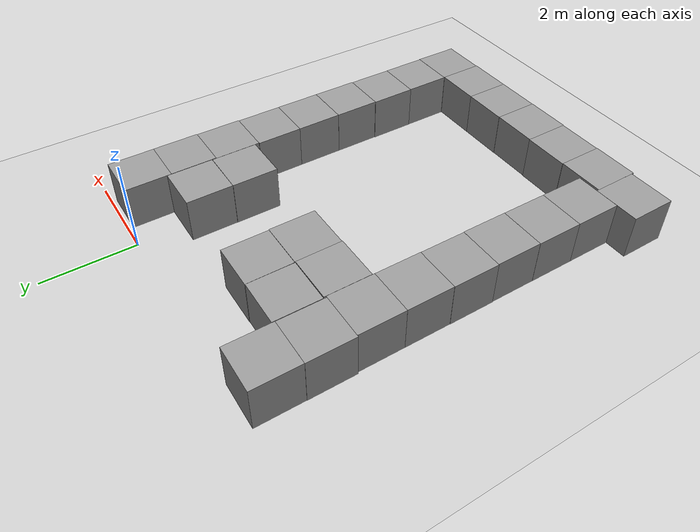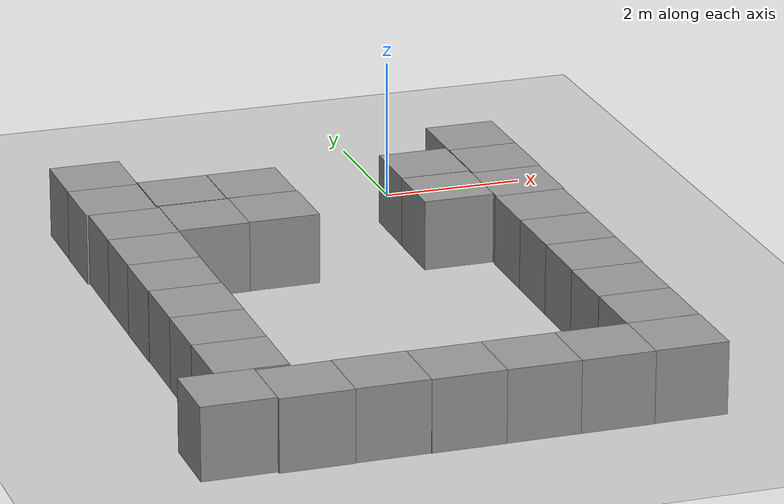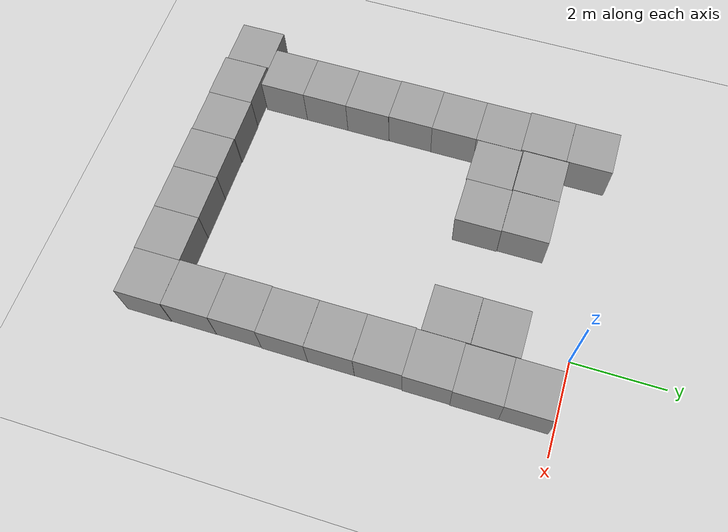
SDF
<sdf version="1.7">
 <world name="default">
  <model name="ground_plane">
   <static>1</static>
   <link name="link">
    <collision name="collision">
     <geometry><plane><normal>0 0 1</normal><size>100 100</size></plane></geometry>
     <surface>
      <contact><collide_bitmask>65535</collide_bitmask></contact>
      <friction><ode><mu>100</mu><mu2>50</mu2></ode></friction>
     </surface>
    </collision>
    <visual name="visual">
     <cast_shadows>0</cast_shadows>
     <geometry><plane><normal>0 0 1</normal><size>100 100</size></plane></geometry>
     <material>
      <script><uri>file://media/materials/scripts/gazebo.material</uri><name>Gazebo/Grey</name></script>
     </material>
    </visual>
   </link>
  </model>
  <model name="unit_box">
   <pose>0.042988 -1.50597 0.499995 -1e-05 -0 -0.000271</pose>
   <link name="link">
    <inertial>
     <mass>1</mass>
     <inertia>
      <ixx>0.166667</ixx>
      <ixy>0</ixy>
      <ixz>0</ixz>
      <iyy>0.166667</iyy>
      <iyz>0</iyz>
      <izz>0.166667</izz>
     </inertia>
    </inertial>
    <collision name="collision"><geometry><box><size>1 1 1</size></box></geometry></collision>
    <visual name="visual">
     <geometry><box><size>1 1 1</size></box></geometry>
     <material>
      <script><name>Gazebo/Grey</name><uri>file://media/materials/scripts/gazebo.material</uri></script>
     </material>
    </visual>
   </link>
  </model>
  <model name="unit_box_0">
   <pose>-2.49934 -1.5123 0.499995 -0 1e-05 -0.000364</pose>
   <link name="link">
    <inertial>
     <mass>1</mass>
     <inertia>
      <ixx>0.166667</ixx>
      <ixy>0</ixy>
      <ixz>0</ixz>
      <iyy>0.166667</iyy>
      <iyz>0</iyz>
      <izz>0.166667</izz>
     </inertia>
    </inertial>
    <collision name="collision"><geometry><box><size>1 1 1</size></box></geometry></collision>
    <visual name="visual">
     <geometry><box><size>1 1 1</size></box></geometry>
     <material>
      <script><name>Gazebo/Grey</name><uri>file://media/materials/scripts/gazebo.material</uri></script>
     </material>
    </visual>
   </link>
  </model>
  <model name="unit_box_1">
   <pose>-3.50337 -1.51492 0.499995 -0 1e-05 -0.005424</pose>
   <link name="link">
    <inertial>
     <mass>1</mass>
     <inertia>
      <ixx>0.166667</ixx>
      <ixy>0</ixy>
      <ixz>0</ixz>
      <iyy>0.166667</iyy>
      <iyz>0</iyz>
      <izz>0.166667</izz>
     </inertia>
    </inertial>
    <collision name="collision"><geometry><box><size>1 1 1</size></box></geometry></collision>
    <visual name="visual">
     <geometry><box><size>1 1 1</size></box></geometry>
     <material>
      <script><name>Gazebo/Grey</name><uri>file://media/materials/scripts/gazebo.material</uri></script>
     </material>
    </visual>
   </link>
  </model>
  <model name="unit_box_2">
   <pose>-4.51469 -1.56923 0.499995 0 1e-05 -0.003208</pose>
   <link name="link">
    <inertial>
     <mass>1</mass>
     <inertia>
      <ixx>0.166667</ixx>
      <ixy>0</ixy>
      <ixz>0</ixz>
      <iyy>0.166667</iyy>
      <iyz>0</iyz>
      <izz>0.166667</izz>
     </inertia>
    </inertial>
    <collision name="collision"><geometry><box><size>1 1 1</size></box></geometry></collision>
    <visual name="visual">
     <geometry><box><size>1 1 1</size></box></geometry>
     <material>
      <script><name>Gazebo/Grey</name><uri>file://media/materials/scripts/gazebo.material</uri></script>
     </material>
    </visual>
   </link>
  </model>
  <model name="unit_box_3">
   <pose>-4.50709 -0.569228 0.5 0 -0 -0.003254</pose>
   <link name="link">
    <inertial>
     <mass>1</mass>
     <inertia>
      <ixx>0.166667</ixx>
      <ixy>0</ixy>
      <ixz>0</ixz>
      <iyy>0.166667</iyy>
      <iyz>0</iyz>
      <izz>0.166667</izz>
     </inertia>
    </inertial>
    <collision name="collision"><geometry><box><size>1 1 1</size></box></geometry></collision>
    <visual name="visual">
     <geometry><box><size>1 1 1</size></box></geometry>
     <material>
      <script><name>Gazebo/Grey</name><uri>file://media/materials/scripts/gazebo.material</uri></script>
     </material>
    </visual>
   </link>
  </model>
  <model name="unit_box_4">
   <pose>1.05308 -1.6029 0.499995 -0 -1e-05 0.000584</pose>
   <link name="link">
    <inertial>
     <mass>1</mass>
     <inertia>
      <ixx>0.166667</ixx>
      <ixy>0</ixy>
      <ixz>0</ixz>
      <iyy>0.166667</iyy>
      <iyz>0</iyz>
      <izz>0.166667</izz>
     </inertia>
    </inertial>
    <collision name="collision"><geometry><box><size>1 1 1</size></box></geometry></collision>
    <visual name="visual">
     <geometry><box><size>1 1 1</size></box></geometry>
     <material>
      <script><name>Gazebo/Grey</name><uri>file://media/materials/scripts/gazebo.material</uri></script>
     </material>
    </visual>
   </link>
  </model>
  <model name="unit_box_5">
   <pose>1.04997 -0.60286 0.499995 0 -1e-05 0.000651</pose>
   <link name="link">
    <inertial>
     <mass>1</mass>
     <inertia>
      <ixx>0.166667</ixx>
      <ixy>0</ixy>
      <ixz>0</ixz>
      <iyy>0.166667</iyy>
      <iyz>0</iyz>
      <izz>0.166667</izz>
     </inertia>
    </inertial>
    <collision name="collision"><geometry><box><size>1 1 1</size></box></geometry></collision>
    <visual name="visual">
     <geometry><box><size>1 1 1</size></box></geometry>
     <material>
      <script><name>Gazebo/Grey</name><uri>file://media/materials/scripts/gazebo.material</uri></script>
     </material>
    </visual>
   </link>
  </model>
  <model name="unit_box_23">
   <pose>0.038282 -2.50874 0.499995 -1e-05 -0 -0.001637</pose>
   <link name="link">
    <inertial>
     <mass>1</mass>
     <inertia>
      <ixx>0.166667</ixx>
      <ixy>0</ixy>
      <ixz>0</ixz>
      <iyy>0.166667</iyy>
      <iyz>0</iyz>
      <izz>0.166667</izz>
     </inertia>
    </inertial>
    <collision name="collision"><geometry><box><size>1 1 1</size></box></geometry></collision>
    <visual name="visual">
     <geometry><box><size>1 1 1</size></box></geometry>
     <material>
      <script><name>Gazebo/Grey</name><uri>file://media/materials/scripts/gazebo.material</uri></script>
     </material>
    </visual>
   </link>
  </model>
  <model name="unit_box_24">
   <pose>1.04092 -2.6029 0.5 0 -0 0.000583</pose>
   <link name="link">
    <inertial>
     <mass>1</mass>
     <inertia>
      <ixx>0.166667</ixx>
      <ixy>0</ixy>
      <ixz>0</ixz>
      <iyy>0.166667</iyy>
      <iyz>0</iyz>
      <izz>0.166667</izz>
     </inertia>
    </inertial>
    <collision name="collision"><geometry><box><size>1 1 1</size></box></geometry></collision>
    <visual name="visual">
     <geometry><box><size>1 1 1</size></box></geometry>
     <material>
      <script><name>Gazebo/Grey</name><uri>file://media/materials/scripts/gazebo.material</uri></script>
     </material>
    </visual>
   </link>
  </model>
  <model name="unit_box_25">
   <pose>-2.48369 -2.5149 0.499995 0 -1e-05 0.000153</pose>
   <link name="link">
    <inertial>
     <mass>1</mass>
     <inertia>
      <ixx>0.166667</ixx>
      <ixy>0</ixy>
      <ixz>0</ixz>
      <iyy>0.166667</iyy>
      <iyz>0</iyz>
      <izz>0.166667</izz>
     </inertia>
    </inertial>
    <collision name="collision"><geometry><box><size>1 1 1</size></box></geometry></collision>
    <visual name="visual">
     <geometry><box><size>1 1 1</size></box></geometry>
     <material>
      <script><name>Gazebo/Grey</name><uri>file://media/materials/scripts/gazebo.material</uri></script>
     </material>
    </visual>
   </link>
  </model>
  <model name="unit_box_26">
   <pose>-3.48371 -2.52726 0.5 0 -0 0.000188</pose>
   <link name="link">
    <inertial>
     <mass>1</mass>
     <inertia>
      <ixx>0.166667</ixx>
      <ixy>0</ixy>
      <ixz>0</ixz>
      <iyy>0.166667</iyy>
      <iyz>0</iyz>
      <izz>0.166667</izz>
     </inertia>
    </inertial>
    <collision name="collision"><geometry><box><size>1 1 1</size></box></geometry></collision>
    <visual name="visual">
     <geometry><box><size>1 1 1</size></box></geometry>
     <material>
      <script><name>Gazebo/Grey</name><uri>file://media/materials/scripts/gazebo.material</uri></script>
     </material>
    </visual>
   </link>
  </model>
  <model name="unit_box_27">
   <pose>-4.48668 -2.56933 0.5 0 0 -0.003208</pose>
   <link name="link">
    <inertial>
     <mass>1</mass>
     <inertia>
      <ixx>0.166667</ixx>
      <ixy>0</ixy>
      <ixz>0</ixz>
      <iyy>0.166667</iyy>
      <iyz>0</iyz>
      <izz>0.166667</izz>
     </inertia>
    </inertial>
    <collision name="collision"><geometry><box><size>1 1 1</size></box></geometry></collision>
    <visual name="visual">
     <geometry><box><size>1 1 1</size></box></geometry>
     <material>
      <script><name>Gazebo/Grey</name><uri>file://media/materials/scripts/gazebo.material</uri></script>
     </material>
    </visual>
   </link>
  </model>
  <model name="unit_box_28">
   <pose>1.02617 -3.60292 0.499995 -1e-05 -0 0.000577</pose>
   <link name="link">
    <inertial>
     <mass>1</mass>
     <inertia>
      <ixx>0.166667</ixx>
      <ixy>0</ixy>
      <ixz>0</ixz>
      <iyy>0.166667</iyy>
      <iyz>0</iyz>
      <izz>0.166667</izz>
     </inertia>
    </inertial>
    <collision name="collision"><geometry><box><size>1 1 1</size></box></geometry></collision>
    <visual name="visual">
     <geometry><box><size>1 1 1</size></box></geometry>
     <material>
      <script><name>Gazebo/Grey</name><uri>file://media/materials/scripts/gazebo.material</uri></script>
     </material>
    </visual>
   </link>
  </model>
  <model name="unit_box_29">
   <pose>1.02745 -4.60315 0.499995 1e-05 -0 0.000129</pose>
   <link name="link">
    <inertial>
     <mass>1</mass>
     <inertia>
      <ixx>0.166667</ixx>
      <ixy>0</ixy>
      <ixz>0</ixz>
      <iyy>0.166667</iyy>
      <iyz>0</iyz>
      <izz>0.166667</izz>
     </inertia>
    </inertial>
    <collision name="collision"><geometry><box><size>1 1 1</size></box></geometry></collision>
    <visual name="visual">
     <geometry><box><size>1 1 1</size></box></geometry>
     <material>
      <script><name>Gazebo/Grey</name><uri>file://media/materials/scripts/gazebo.material</uri></script>
     </material>
    </visual>
   </link>
  </model>
  <model name="unit_box_30">
   <pose>1.02536 -5.60349 0.499995 0 -1e-05 -0.000468</pose>
   <link name="link">
    <inertial>
     <mass>1</mass>
     <inertia>
      <ixx>0.166667</ixx>
      <ixy>0</ixy>
      <ixz>0</ixz>
      <iyy>0.166667</iyy>
      <iyz>0</iyz>
      <izz>0.166667</izz>
     </inertia>
    </inertial>
    <collision name="collision"><geometry><box><size>1 1 1</size></box></geometry></collision>
    <visual name="visual">
     <geometry><box><size>1 1 1</size></box></geometry>
     <material>
      <script><name>Gazebo/Grey</name><uri>file://media/materials/scripts/gazebo.material</uri></script>
     </material>
    </visual>
   </link>
  </model>
  <model name="unit_box_31">
   <pose>1.01459 -6.60351 0.499995 0 -1e-05 -0.000478</pose>
   <link name="link">
    <inertial>
     <mass>1</mass>
     <inertia>
      <ixx>0.166667</ixx>
      <ixy>0</ixy>
      <ixz>0</ixz>
      <iyy>0.166667</iyy>
      <iyz>0</iyz>
      <izz>0.166667</izz>
     </inertia>
    </inertial>
    <collision name="collision"><geometry><box><size>1 1 1</size></box></geometry></collision>
    <visual name="visual">
     <geometry><box><size>1 1 1</size></box></geometry>
     <material>
      <script><name>Gazebo/Grey</name><uri>file://media/materials/scripts/gazebo.material</uri></script>
     </material>
    </visual>
   </link>
  </model>
  <model name="unit_box_32">
   <pose>1.01762 -7.60361 0.499995 0 -1e-05 -0.000308</pose>
   <link name="link">
    <inertial>
     <mass>1</mass>
     <inertia>
      <ixx>0.166667</ixx>
      <ixy>0</ixy>
      <ixz>0</ixz>
      <iyy>0.166667</iyy>
      <iyz>0</iyz>
      <izz>0.166667</izz>
     </inertia>
    </inertial>
    <collision name="collision"><geometry><box><size>1 1 1</size></box></geometry></collision>
    <visual name="visual">
     <geometry><box><size>1 1 1</size></box></geometry>
     <material>
      <script><name>Gazebo/Grey</name><uri>file://media/materials/scripts/gazebo.material</uri></script>
     </material>
    </visual>
   </link>
  </model>
  <model name="unit_box_33">
   <pose>1.02574 -8.60396 0.5 0 0 -0.000435</pose>
   <link name="link">
    <inertial>
     <mass>1</mass>
     <inertia>
      <ixx>0.166667</ixx>
      <ixy>0</ixy>
      <ixz>0</ixz>
      <iyy>0.166667</iyy>
      <iyz>0</iyz>
      <izz>0.166667</izz>
     </inertia>
    </inertial>
    <collision name="collision"><geometry><box><size>1 1 1</size></box></geometry></collision>
    <visual name="visual">
     <geometry><box><size>1 1 1</size></box></geometry>
     <material>
      <script><name>Gazebo/Grey</name><uri>file://media/materials/scripts/gazebo.material</uri></script>
     </material>
    </visual>
   </link>
  </model>
  <model name="unit_box_34">
   <pose>0.025735 -8.61417 0.5 0 -0 -0.000435</pose>
   <link name="link">
    <inertial>
     <mass>1</mass>
     <inertia>
      <ixx>0.166667</ixx>
      <ixy>0</ixy>
      <ixz>0</ixz>
      <iyy>0.166667</iyy>
      <iyz>0</iyz>
      <izz>0.166667</izz>
     </inertia>
    </inertial>
    <collision name="collision"><geometry><box><size>1 1 1</size></box></geometry></collision>
    <visual name="visual">
     <geometry><box><size>1 1 1</size></box></geometry>
     <material>
      <script><name>Gazebo/Grey</name><uri>file://media/materials/scripts/gazebo.material</uri></script>
     </material>
    </visual>
   </link>
  </model>
  <model name="unit_box_35">
   <pose>-0.974325 -8.61399 0.499995 0 1e-05 -0.000516</pose>
   <link name="link">
    <inertial>
     <mass>1</mass>
     <inertia>
      <ixx>0.166667</ixx>
      <ixy>0</ixy>
      <ixz>0</ixz>
      <iyy>0.166667</iyy>
      <iyz>0</iyz>
      <izz>0.166667</izz>
     </inertia>
    </inertial>
    <collision name="collision"><geometry><box><size>1 1 1</size></box></geometry></collision>
    <visual name="visual">
     <geometry><box><size>1 1 1</size></box></geometry>
     <material>
      <script><name>Gazebo/Grey</name><uri>file://media/materials/scripts/gazebo.material</uri></script>
     </material>
    </visual>
   </link>
  </model>
  <model name="unit_box_36">
   <pose>-1.97434 -8.61838 0.499947 -7e-06 -0 -0.00052</pose>
   <link name="link">
    <inertial>
     <mass>1</mass>
     <inertia>
      <ixx>0.166667</ixx>
      <ixy>0</ixy>
      <ixz>0</ixz>
      <iyy>0.166667</iyy>
      <iyz>0</iyz>
      <izz>0.166667</izz>
     </inertia>
    </inertial>
    <collision name="collision"><geometry><box><size>1 1 1</size></box></geometry></collision>
    <visual name="visual">
     <geometry><box><size>1 1 1</size></box></geometry>
     <material>
      <script><name>Gazebo/Grey</name><uri>file://media/materials/scripts/gazebo.material</uri></script>
     </material>
    </visual>
   </link>
  </model>
  <model name="unit_box_37">
   <pose>-2.97434 -8.60773 0.5 -0 -0 -0.000525</pose>
   <link name="link">
    <inertial>
     <mass>1</mass>
     <inertia>
      <ixx>0.166667</ixx>
      <ixy>0</ixy>
      <ixz>0</ixz>
      <iyy>0.166667</iyy>
      <iyz>0</iyz>
      <izz>0.166667</izz>
     </inertia>
    </inertial>
    <collision name="collision"><geometry><box><size>1 1 1</size></box></geometry></collision>
    <visual name="visual">
     <geometry><box><size>1 1 1</size></box></geometry>
     <material>
      <script><name>Gazebo/Grey</name><uri>file://media/materials/scripts/gazebo.material</uri></script>
     </material>
    </visual>
   </link>
  </model>
  <model name="unit_box_38">
   <pose>-3.97442 -8.61918 0.499946 -1e-05 -0 -0.000657</pose>
   <link name="link">
    <inertial>
     <mass>1</mass>
     <inertia>
      <ixx>0.166667</ixx>
      <ixy>0</ixy>
      <ixz>0</ixz>
      <iyy>0.166667</iyy>
      <iyz>0</iyz>
      <izz>0.166667</izz>
     </inertia>
    </inertial>
    <collision name="collision"><geometry><box><size>1 1 1</size></box></geometry></collision>
    <visual name="visual">
     <geometry><box><size>1 1 1</size></box></geometry>
     <material>
      <script><name>Gazebo/Grey</name><uri>file://media/materials/scripts/gazebo.material</uri></script>
     </material>
    </visual>
   </link>
  </model>
  <model name="unit_box_39">
   <pose>-4.49101 -3.56933 0.499995 0 1e-05 -0.003201</pose>
   <link name="link">
    <inertial>
     <mass>1</mass>
     <inertia>
      <ixx>0.166667</ixx>
      <ixy>0</ixy>
      <ixz>0</ixz>
      <iyy>0.166667</iyy>
      <iyz>0</iyz>
      <izz>0.166667</izz>
     </inertia>
    </inertial>
    <collision name="collision"><geometry><box><size>1 1 1</size></box></geometry></collision>
    <visual name="visual">
     <geometry><box><size>1 1 1</size></box></geometry>
     <material>
      <script><name>Gazebo/Grey</name><uri>file://media/materials/scripts/gazebo.material</uri></script>
     </material>
    </visual>
   </link>
  </model>
  <model name="unit_box_40">
   <pose>-4.49822 -4.56931 0.5 0 -0 -0.003203</pose>
   <link name="link">
    <inertial>
     <mass>1</mass>
     <inertia>
      <ixx>0.166667</ixx>
      <ixy>0</ixy>
      <ixz>0</ixz>
      <iyy>0.166667</iyy>
      <iyz>0</iyz>
      <izz>0.166667</izz>
     </inertia>
    </inertial>
    <collision name="collision"><geometry><box><size>1 1 1</size></box></geometry></collision>
    <visual name="visual">
     <geometry><box><size>1 1 1</size></box></geometry>
     <material>
      <script><name>Gazebo/Grey</name><uri>file://media/materials/scripts/gazebo.material</uri></script>
     </material>
    </visual>
   </link>
  </model>
  <model name="unit_box_41">
   <pose>-4.49305 -5.56934 0.499995 1e-05 -0 -0.003201</pose>
   <link name="link">
    <inertial>
     <mass>1</mass>
     <inertia>
      <ixx>0.166667</ixx>
      <ixy>0</ixy>
      <ixz>0</ixz>
      <iyy>0.166667</iyy>
      <iyz>0</iyz>
      <izz>0.166667</izz>
     </inertia>
    </inertial>
    <collision name="collision"><geometry><box><size>1 1 1</size></box></geometry></collision>
    <visual name="visual">
     <geometry><box><size>1 1 1</size></box></geometry>
     <material>
      <script><name>Gazebo/Grey</name><uri>file://media/materials/scripts/gazebo.material</uri></script>
     </material>
    </visual>
   </link>
  </model>
  <model name="unit_box_42">
   <pose>-4.49816 -6.56947 0.5 0 0 -0.003504</pose>
   <link name="link">
    <inertial>
     <mass>1</mass>
     <inertia>
      <ixx>0.166667</ixx>
      <ixy>0</ixy>
      <ixz>0</ixz>
      <iyy>0.166667</iyy>
      <iyz>0</iyz>
      <izz>0.166667</izz>
     </inertia>
    </inertial>
    <collision name="collision"><geometry><box><size>1 1 1</size></box></geometry></collision>
    <visual name="visual">
     <geometry><box><size>1 1 1</size></box></geometry>
     <material>
      <script><name>Gazebo/Grey</name><uri>file://media/materials/scripts/gazebo.material</uri></script>
     </material>
    </visual>
   </link>
  </model>
  <model name="unit_box_43">
   <pose>-4.50127 -7.56947 0.5 0 -0 -0.00351</pose>
   <link name="link">
    <inertial>
     <mass>1</mass>
     <inertia>
      <ixx>0.166667</ixx>
      <ixy>0</ixy>
      <ixz>0</ixz>
      <iyy>0.166667</iyy>
      <iyz>0</iyz>
      <izz>0.166667</izz>
     </inertia>
    </inertial>
    <collision name="collision"><geometry><box><size>1 1 1</size></box></geometry></collision>
    <visual name="visual">
     <geometry><box><size>1 1 1</size></box></geometry>
     <material>
      <script><name>Gazebo/Grey</name><uri>file://media/materials/scripts/gazebo.material</uri></script>
     </material>
    </visual>
   </link>
  </model>
  <model name="unit_box_44">
   <pose>-4.97473 -8.56887 0.499995 1e-05 -0 -0.001422</pose>
   <link name="link">
    <inertial>
     <mass>1</mass>
     <inertia>
      <ixx>0.166667</ixx>
      <ixy>0</ixy>
      <ixz>0</ixz>
      <iyy>0.166667</iyy>
      <iyz>0</iyz>
      <izz>0.166667</izz>
     </inertia>
    </inertial>
    <collision name="collision"><geometry><box><size>1 1 1</size></box></geometry></collision>
    <visual name="visual">
     <geometry><box><size>1 1 1</size></box></geometry>
     <material>
      <script><name>Gazebo/Grey</name><uri>file://media/materials/scripts/gazebo.material</uri></script>
     </material>
    </visual>
   </link>
  </model>
 </world>
</sdf>
